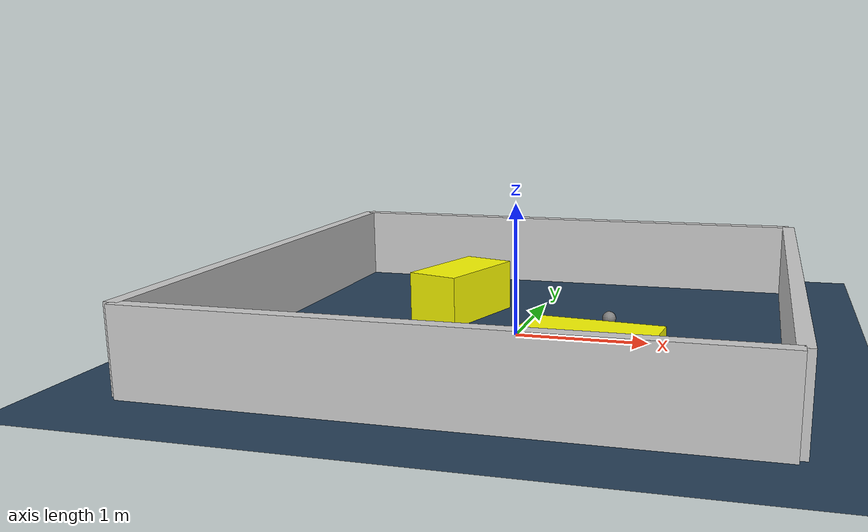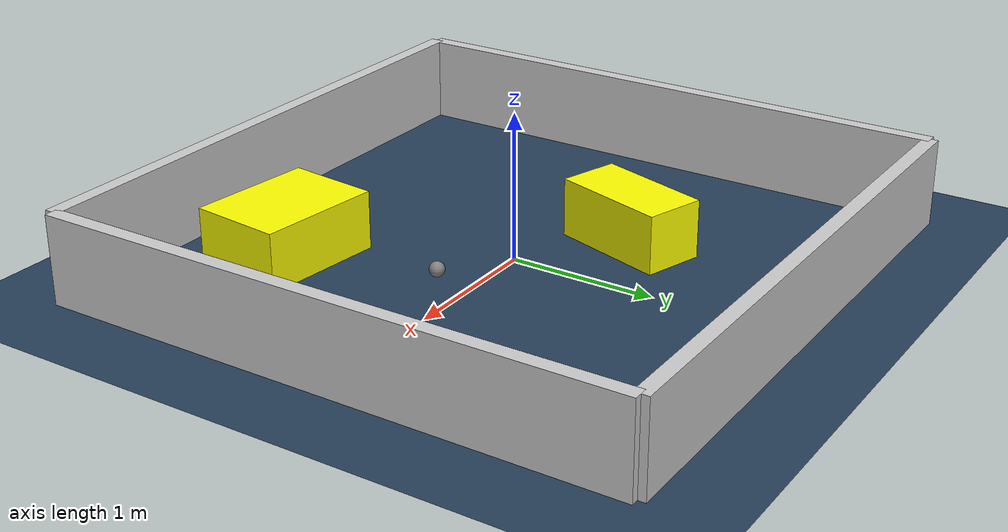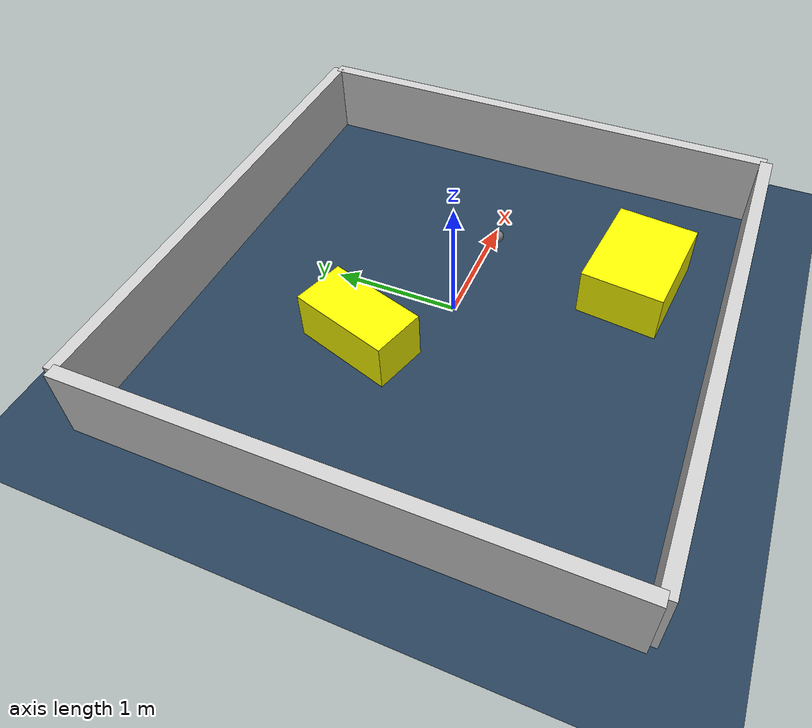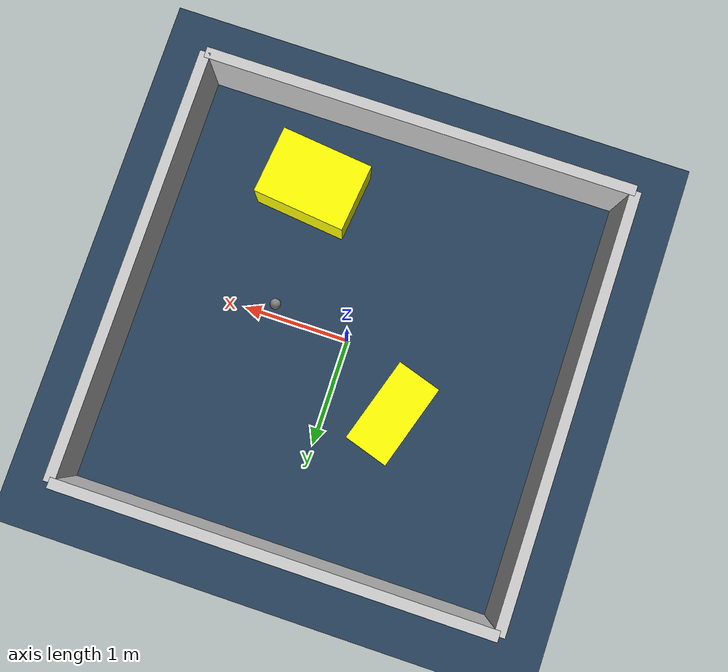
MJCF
<?xml version="1.0" ?>
<mujoco model="generated_environment">
  <option timestep="0.01" integrator="RK4" cone="elliptic"/>
  <default>
    <geom density="1"/>
  </default>
  <asset>
    <texture builtin="gradient" height="3072" rgb1="0.3 0.5 0.7" rgb2="0 0 0" type="skybox" width="512"/>
    <texture builtin="checker" height="300" mark="edge" markrgb="0.8 0.8 0.8" name="groundplane" rgb1="0.2 0.3 0.4" rgb2="0.1 0.2 0.3" type="2d" width="300"/>
    <material name="groundplane" reflectance="0.2" texrepeat="5 5" texture="groundplane" texuniform="true"/>
    <material name="robot" rgba="0.0 1.0 0.0 1"/>
  </asset>
  <worldbody>
    <light dir="0 0 -1" directional="true" pos="0 0 1.5"/>
    <geom condim="4" friction="1.0 0.005 0.001" material="groundplane" name="floor" size="0 0 0.05" type="plane"/>
    <body name="walls">
      <geom name="wall_1" condim="4" pos="-2.0 0.0 0.3" rgba="0.800000011920929 0.800000011920929 0.800000011920929 1.0" size="0.05 2.0 0.3" type="box"/>
      <geom name="wall_2" condim="4" pos="2.0 0.0 0.3" rgba="0.800000011920929 0.800000011920929 0.800000011920929 1.0" size="0.05 2.0 0.3" type="box"/>
      <geom name="wall_3" condim="4" pos="0.0 -2.0 0.3" rgba="0.800000011920929 0.800000011920929 0.800000011920929 1.0" size="2.0 0.05 0.3" type="box"/>
      <geom name="wall_4" condim="4" pos="0.0 2.0 0.3" rgba="0.800000011920929 0.800000011920929 0.800000011920929 1.0" size="2.0 0.05 0.3" type="box"/>
    </body>
    <body name="robot">
      <joint name="joint_x" type="slide" pos="0 0 0" axis="1 0 0"/>
      <joint name="joint_y" type="slide" pos="0 0 0" axis="0 1 0"/>
      <geom name="robot" type="sphere" pos="0.7215568928231786 -0.09749150990420663 0.2" size="0.05" mass="5." friction="1.0 0.005 0.0001" condim="4"/>
      <site name="sensor_ball"/>
    </body>
    <body name="obstacle_1_movable">
      <geom name="obstacle_1_movable" condim="4" pos="0.7486330086857886 -1.260850620762441 0.2" euler="0 0 83.75171683387062" friction="1.0 0.005 0.001" rgba="1 1 0 1" size="0.3219153418556939 0.4349868414377071 0.2" type="box" mass="0.1"/>
      <joint type="free"/>
    </body>
    <body name="obstacle_2_movable">
      <geom name="obstacle_2_movable" condim="4" pos="-0.5913707639605592 0.5151232503112375 0.2" euler="0 0 342.5711804361004" friction="1.0 0.005 0.001" rgba="1 1 0 1" size="0.21121412654276228 0.4081712698286419 0.2" type="box" mass="0.1"/>
      <joint type="free"/>
    </body>
  </worldbody>
  <actuator>
    <motor name="actuator_x" joint="joint_x" gear="1" ctrlrange="-1 1"/>
    <motor name="actuator_y" joint="joint_y" gear="1" ctrlrange="-1 1"/>
  </actuator>
</mujoco>
